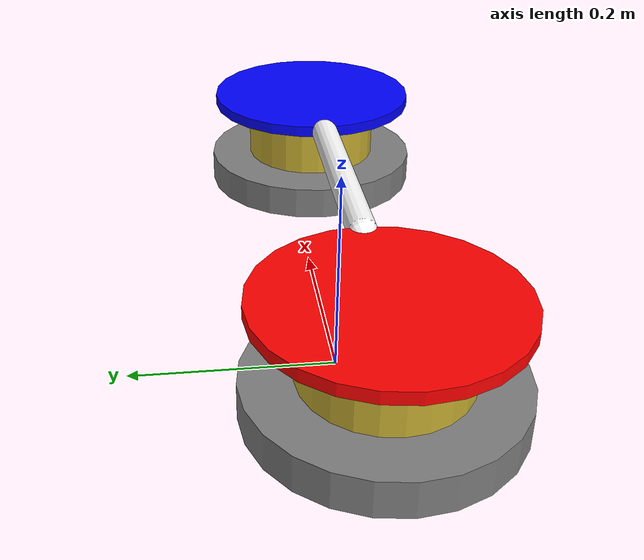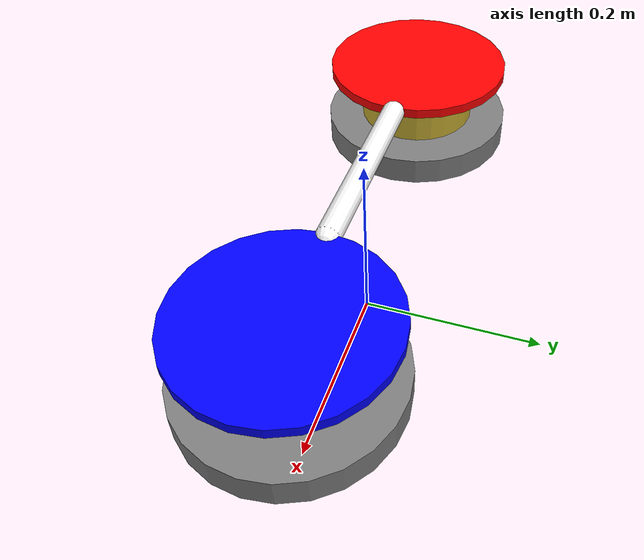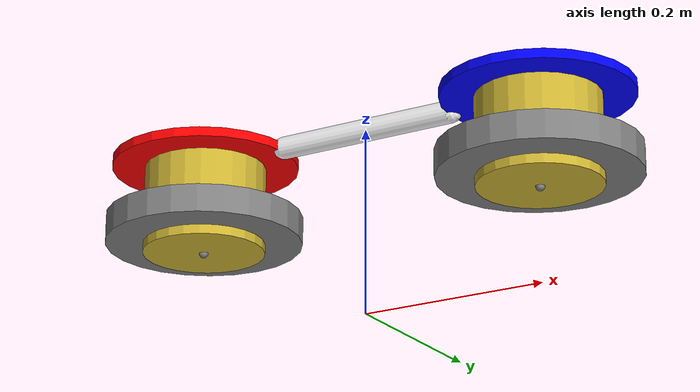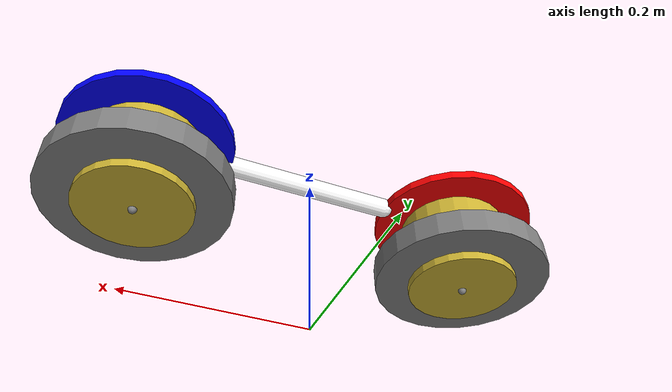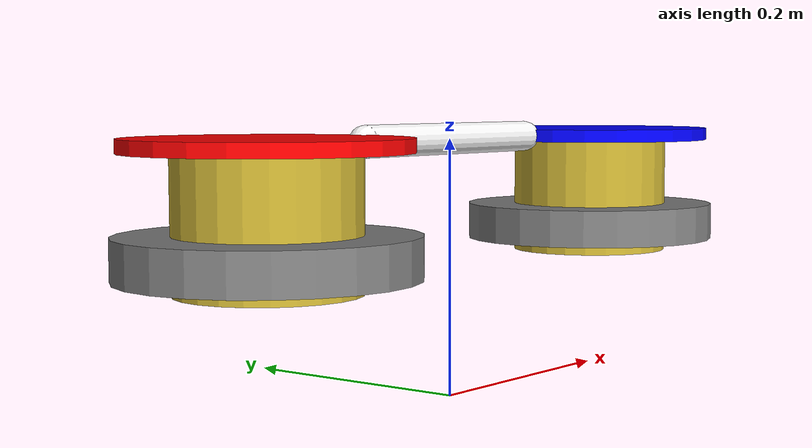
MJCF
<mujoco model="lappa_model">
	<visual>
		<scale contactwidth="0.1" jointwidth="0.05" jointlength=".5" />
	</visual>
	<worldbody>
    <light pos="0 0 1" mode="targetbody" target="root" attenuation=".25 0 0"  />
		<body name="root" pos="0 0 .20">
			<freejoint />
			<body name="base">
				<geom name="arm" type="capsule" fromto="-.1 0 0 .1 0 0" size=".012" rgba="1 1 1 1" mass=".02" />
				<body name="a_module" pos="-.1 0 0">
					<site name="a_propeller" pos="-.1 0 -.05" />
					<joint name="a_h2" type="hinge" axis="0 1 0" limited="true" range="-45 45" stiffness=".5" />
					<geom name="a_house" type="cylinder" size=".1 .005" pos="-.1 0 0" rgba="1 0 0 1" mass=".1" />
					<joint name="a_h1" type="hinge" axis="0 0 1" pos="-.1 0 -.05" />
					<body name="a_chamber">
						<site name="a_vacuum" pos="-.1 0 -.1" euler="0 180 0" />
						<site name="a_touch" type="cylinder" size=".105 .015" pos="-.1 0 -.075" />
						<geom name="a_touch" type="cylinder" size=".105 .015" pos="-.1 0 -.075" rgba="0 1 0 .25" mass="0" />
						<geom name="a_gear" type="cylinder" size=".065 .05" pos="-.1 0 -.05" rgba="0.8 0.7 0.2 1" mass=".25" />
					</body>
				</body>
				<body name="b_module" pos=".1 0 0">
					<site name="b_propeller" pos=".1 0 -.05" />
					<joint name="h3" type="hinge" axis="1 0 0" limited="true" range="-90 90" pos="-.1 0 0" stiffness=".5" damping="2" />
					<joint name="b_h2" type="hinge" axis="0 1 0" limited="true" range="-45 45" stiffness=".5" />
					<geom name="b_house" type="cylinder" size=".1 .005" pos=".1 0 0" rgba="0 0 1 1" mass=".1" />
					<joint name="b_h1" type="hinge" axis="0 0 1" pos=".1 0 -.05" />
					<body name="b_chamber">
						<site name="b_vacuum" pos=".1 0 -.1" euler="0 180 0" />
						<site name="b_touch" type="cylinder" size=".105 .015" pos=".1 0 -.075" />
						<geom name="b_touch" type="cylinder" size=".105 .015" pos=".1 0 -.075" rgba="0 1 0 .25" mass="0" />
						<geom name="b_gear" type="cylinder" size=".065 .05" pos=".1 0 -.05" rgba="0.8 0.7 0.2 1" mass=".25" />
					</body>
				</body>
			</body>
		</body>
	</worldbody>
	<sensor>
		<force name="a_vacuum" site="a_vacuum" />
		<force name="b_vacuum" site="b_vacuum" />
		<jointpos name="a_h1" joint="a_h1" />
		<jointpos name="b_h1" joint="b_h1" />
		<jointpos name="a_h2" joint="a_h2" />
		<jointpos name="b_h2" joint="b_h2" />
		<touch name="a_touch" site="a_touch" />
		<touch name="b_touch" site="b_touch" />
		<framepos name="a_position" objtype="site" objname="a_vacuum" />
		<framepos name="b_position" objtype="site" objname="b_vacuum" />
		<rangefinder name="a_rangefinder" site="a_vacuum" />
		<rangefinder name="b_rangefinder" site="b_vacuum" />
	</sensor>
	<actuator>
		<motor name="a_thrust" site="a_propeller" ctrllimited="true" ctrlrange="-1 1" gear="0 0 15" />
		<motor name="b_thrust" site="b_propeller" ctrllimited="true" ctrlrange="-1 1" gear="0 0 15" />
		<adhesion name="a_vacuum" body="a_chamber" ctrlrange="0 1" gain="250" />
		<adhesion name="b_vacuum" body="b_chamber" ctrlrange="0 1" gain="250" />
		<motor name="a_h1" joint="a_h1" gear=".5" />
		<motor name="b_h1" joint="b_h1" gear=".5" />
	</actuator>
</mujoco>
